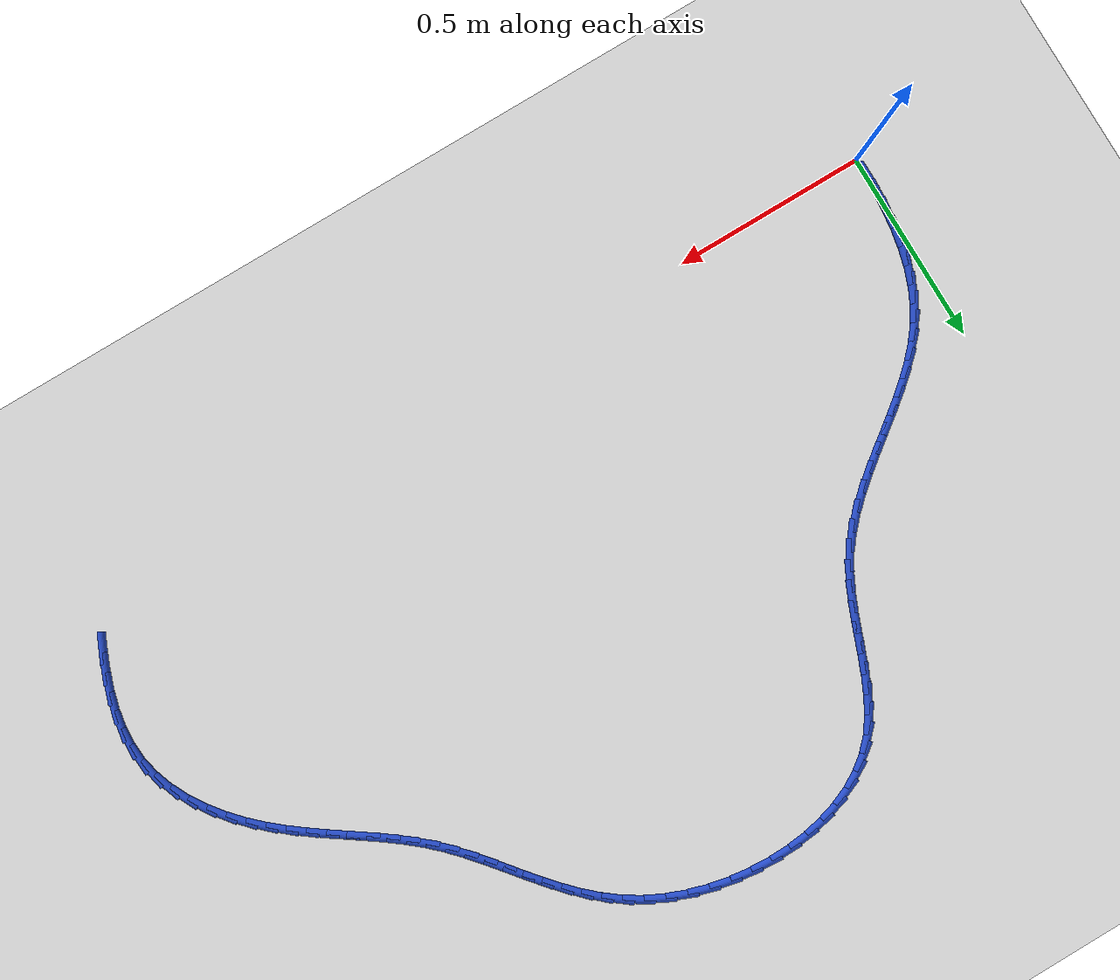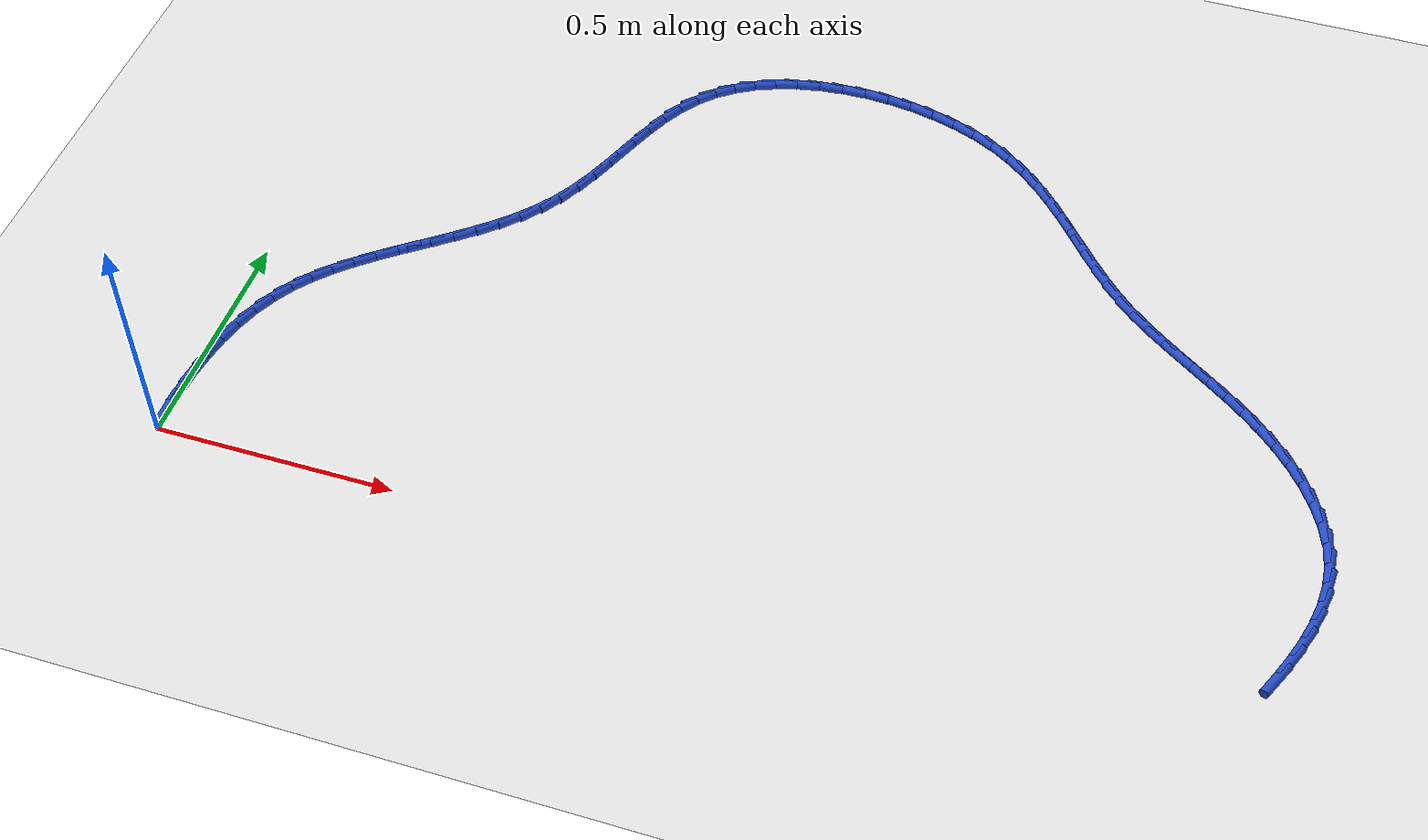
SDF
<sdf version="1.6">
 <world name="default">
  <model name="ground_plane">
   <static>1</static>
   <link name="link">
    <collision name="collision">
     <geometry><plane><normal>0 0 1</normal><size>100 100</size></plane></geometry>
     <surface><friction><ode><mu>100</mu><mu2>50</mu2></ode></friction></surface>
    </collision>
    <visual name="visual">
     <cast_shadows>0</cast_shadows>
     <geometry><plane><normal>0 0 1</normal><size>100 100</size></plane></geometry>
     <material>
      <script><uri>file://media/materials/scripts/gazebo.material</uri><name>Gazebo/WhiteGlow</name></script>
     </material>
    </visual>
   </link>
  </model>
  <model name="line">
   <link name="link_2">
    <pose>0.0015339669497802014 0.10148856789524614 0.01 0 1.57 1.490337265067527</pose>
    <collision name="collision">
     <geometry><cylinder><radius>0.01</radius><length>0.08</length></cylinder></geometry>
    </collision>
    <visual name="visual">
     <material>
      <script><name>Gazebo/Blue</name><uri>file://media/materials/scripts/gazebo.material</uri></script>
     </material>
     <geometry><cylinder><radius>0.01</radius><length>0.08</length></cylinder></geometry>
    </visual>
   </link>
   <link name="link_3">
    <pose>0.00558555432442037 0.1517357450943004 0.01 0 1.57 1.4363469865343408</pose>
    <collision name="collision">
     <geometry><cylinder><radius>0.01</radius><length>0.08</length></cylinder></geometry>
    </collision>
    <visual name="visual">
     <material>
      <script><name>Gazebo/Blue</name><uri>file://media/materials/scripts/gazebo.material</uri></script>
     </material>
     <geometry><cylinder><radius>0.01</radius><length>0.08</length></cylinder></geometry>
    </visual>
   </link>
   <link name="link_4">
    <pose>0.012267335646483097 0.2011333200786106 0.01 0 1.57 1.37319205572349</pose>
    <collision name="collision">
     <geometry><cylinder><radius>0.01</radius><length>0.08</length></cylinder></geometry>
    </collision>
    <visual name="visual">
     <material>
      <script><name>Gazebo/Blue</name><uri>file://media/materials/scripts/gazebo.material</uri></script>
     </material>
     <geometry><cylinder><radius>0.01</radius><length>0.08</length></cylinder></geometry>
    </visual>
   </link>
   <link name="link_5">
    <pose>0.02190965442666025 0.24929264456140315 0.01 0 1.57 1.2996993328609765</pose>
    <collision name="collision">
     <geometry><cylinder><radius>0.01</radius><length>0.08</length></cylinder></geometry>
    </collision>
    <visual name="visual">
     <material>
      <script><name>Gazebo/Blue</name><uri>file://media/materials/scripts/gazebo.material</uri></script>
     </material>
     <geometry><cylinder><radius>0.01</radius><length>0.08</length></cylinder></geometry>
    </visual>
   </link>
   <link name="link_6">
    <pose>0.034842854175643714 0.2958250702559045 0.01 0 1.57 1.214773916480472</pose>
    <collision name="collision">
     <geometry><cylinder><radius>0.01</radius><length>0.08</length></cylinder></geometry>
    </collision>
    <visual name="visual">
     <material>
      <script><name>Gazebo/Blue</name><uri>file://media/materials/scripts/gazebo.material</uri></script>
     </material>
     <geometry><cylinder><radius>0.01</radius><length>0.08</length></cylinder></geometry>
    </visual>
   </link>
   <link name="link_7">
    <pose>0.05139727840412536 0.3403419488753411 0.01 0 1.57 1.1176580658109911</pose>
    <collision name="collision">
     <geometry><cylinder><radius>0.01</radius><length>0.08</length></cylinder></geometry>
    </collision>
    <visual name="visual">
     <material>
      <script><name>Gazebo/Blue</name><uri>file://media/materials/scripts/gazebo.material</uri></script>
     </material>
     <geometry><cylinder><radius>0.01</radius><length>0.08</length></cylinder></geometry>
    </visual>
   </link>
   <link name="link_8">
    <pose>0.07190327062279704 0.38245463213293907 0.01 0 1.57 1.0086001765209236</pose>
    <collision name="collision">
     <geometry><cylinder><radius>0.01</radius><length>0.08</length></cylinder></geometry>
    </collision>
    <visual name="visual">
     <material>
      <script><name>Gazebo/Blue</name><uri>file://media/materials/scripts/gazebo.material</uri></script>
     </material>
     <geometry><cylinder><radius>0.01</radius><length>0.08</length></cylinder></geometry>
    </visual>
   </link>
   <link name="link_9">
    <pose>0.09668090085959263 0.421783383661874 0.01 0 1.57 0.9006516839340023</pose>
    <collision name="collision">
     <geometry><cylinder><radius>0.01</radius><length>0.08</length></cylinder></geometry>
    </collision>
    <visual name="visual">
     <material>
      <script><name>Gazebo/Blue</name><uri>file://media/materials/scripts/gazebo.material</uri></script>
     </material>
     <geometry><cylinder><radius>0.01</radius><length>0.08</length></cylinder></geometry>
    </visual>
   </link>
   <link name="link_10">
    <pose>0.12563014930665417 0.4583128816834464 0.01 0 1.57 0.8114361110938803</pose>
    <collision name="collision">
     <geometry><cylinder><radius>0.01</radius><length>0.08</length></cylinder></geometry>
    </collision>
    <visual name="visual">
     <material>
      <script><name>Gazebo/Blue</name><uri>file://media/materials/scripts/gazebo.material</uri></script>
     </material>
     <geometry><cylinder><radius>0.01</radius><length>0.08</length></cylinder></geometry>
    </visual>
   </link>
   <link name="link_11">
    <pose>0.15809299289128564 0.4925118545258721 0.01 0 1.57 0.7424206700754056</pose>
    <collision name="collision">
     <geometry><cylinder><radius>0.01</radius><length>0.08</length></cylinder></geometry>
    </collision>
    <visual name="visual">
     <material>
      <script><name>Gazebo/Blue</name><uri>file://media/materials/scripts/gazebo.material</uri></script>
     </material>
     <geometry><cylinder><radius>0.01</radius><length>0.08</length></cylinder></geometry>
    </visual>
   </link>
   <link name="link_12">
    <pose>0.19337285360434386 0.5248824757000119 0.01 0 1.57 0.6928025710875316</pose>
    <collision name="collision">
     <geometry><cylinder><radius>0.01</radius><length>0.08</length></cylinder></geometry>
    </collision>
    <visual name="visual">
     <material>
      <script><name>Gazebo/Blue</name><uri>file://media/materials/scripts/gazebo.material</uri></script>
     </material>
     <geometry><cylinder><radius>0.01</radius><length>0.08</length></cylinder></geometry>
    </visual>
   </link>
   <link name="link_13">
    <pose>0.23077315343668575 0.5559269187167268 0.01 0 1.57 0.6614261168781185</pose>
    <collision name="collision">
     <geometry><cylinder><radius>0.01</radius><length>0.08</length></cylinder></geometry>
    </collision>
    <visual name="visual">
     <material>
      <script><name>Gazebo/Blue</name><uri>file://media/materials/scripts/gazebo.material</uri></script>
     </material>
     <geometry><cylinder><radius>0.01</radius><length>0.08</length></cylinder></geometry>
    </visual>
   </link>
   <link name="link_14">
    <pose>0.2695973143791681 0.5861473570868777 0.01 0 1.57 0.6472933082343424</pose>
    <collision name="collision">
     <geometry><cylinder><radius>0.01</radius><length>0.08</length></cylinder></geometry>
    </collision>
    <visual name="visual">
     <material>
      <script><name>Gazebo/Blue</name><uri>file://media/materials/scripts/gazebo.material</uri></script>
     </material>
     <geometry><cylinder><radius>0.01</radius><length>0.08</length></cylinder></geometry>
    </visual>
   </link>
   <link name="link_15">
    <pose>0.30914875842264783 0.6160459643213256 0.01 0 1.57 0.6498146580403017</pose>
    <collision name="collision">
     <geometry><cylinder><radius>0.01</radius><length>0.08</length></cylinder></geometry>
    </collision>
    <visual name="visual">
     <material>
      <script><name>Gazebo/Blue</name><uri>file://media/materials/scripts/gazebo.material</uri></script>
     </material>
     <geometry><cylinder><radius>0.01</radius><length>0.08</length></cylinder></geometry>
    </visual>
   </link>
   <link name="link_16">
    <pose>0.34873090755798186 0.6461249139309321 0.01 0 1.57 0.6688920855835448</pose>
    <collision name="collision">
     <geometry><cylinder><radius>0.01</radius><length>0.08</length></cylinder></geometry>
    </collision>
    <visual name="visual">
     <material>
      <script><name>Gazebo/Blue</name><uri>file://media/materials/scripts/gazebo.material</uri></script>
     </material>
     <geometry><cylinder><radius>0.01</radius><length>0.08</length></cylinder></geometry>
    </visual>
   </link>
   <link name="link_17">
    <pose>0.38764718377602714 0.6768863794265575 0.01 0 1.57 0.7048866489453667</pose>
    <collision name="collision">
     <geometry><cylinder><radius>0.01</radius><length>0.08</length></cylinder></geometry>
    </collision>
    <visual name="visual">
     <material>
      <script><name>Gazebo/Blue</name><uri>file://media/materials/scripts/gazebo.material</uri></script>
     </material>
     <geometry><cylinder><radius>0.01</radius><length>0.08</length></cylinder></geometry>
    </visual>
   </link>
   <link name="link_18">
    <pose>0.4252010090676404 0.708832534319063 0.01 0 1.57 0.7584722635348621</pose>
    <collision name="collision">
     <geometry><cylinder><radius>0.01</radius><length>0.08</length></cylinder></geometry>
    </collision>
    <visual name="visual">
     <material>
      <script><name>Gazebo/Blue</name><uri>file://media/materials/scripts/gazebo.material</uri></script>
     </material>
     <geometry><cylinder><radius>0.01</radius><length>0.08</length></cylinder></geometry>
    </visual>
   </link>
   <link name="link_19">
    <pose>0.46069580542367844 0.7424655521193093 0.01 0 1.57 0.8303330194741779</pose>
    <collision name="collision">
     <geometry><cylinder><radius>0.01</radius><length>0.08</length></cylinder></geometry>
    </collision>
    <visual name="visual">
     <material>
      <script><name>Gazebo/Blue</name><uri>file://media/materials/scripts/gazebo.material</uri></script>
     </material>
     <geometry><cylinder><radius>0.01</radius><length>0.08</length></cylinder></geometry>
    </visual>
   </link>
   <link name="link_20">
    <pose>0.4934349948349982 0.7782876063381576 0.01 0 1.57 0.920647395929913</pose>
    <collision name="collision">
     <geometry><cylinder><radius>0.01</radius><length>0.08</length></cylinder></geometry>
    </collision>
    <visual name="visual">
     <material>
      <script><name>Gazebo/Blue</name><uri>file://media/materials/scripts/gazebo.material</uri></script>
     </material>
     <geometry><cylinder><radius>0.01</radius><length>0.08</length></cylinder></geometry>
    </visual>
   </link>
   <link name="link_21">
    <pose>0.5227219992924568 0.8168008704864695 0.01 0 1.57 1.0240096917019041</pose>
    <collision name="collision">
     <geometry><cylinder><radius>0.01</radius><length>0.08</length></cylinder></geometry>
    </collision>
    <visual name="visual">
     <material>
      <script><name>Gazebo/Blue</name><uri>file://media/materials/scripts/gazebo.material</uri></script>
     </material>
     <geometry><cylinder><radius>0.01</radius><length>0.08</length></cylinder></geometry>
    </visual>
   </link>
   <link name="link_22">
    <pose>0.5480275524140348 0.8583744856599039 0.01 0 1.57 1.1099008937512582</pose>
    <collision name="collision">
     <geometry><cylinder><radius>0.01</radius><length>0.08</length></cylinder></geometry>
    </collision>
    <visual name="visual">
     <material>
      <script><name>Gazebo/Blue</name><uri>file://media/materials/scripts/gazebo.material</uri></script>
     </material>
     <geometry><cylinder><radius>0.01</radius><length>0.08</length></cylinder></geometry>
    </visual>
   </link>
   <link name="link_23">
    <pose>0.5699351493587663 0.902492816696223 0.01 0 1.57 1.167297756255069</pose>
    <collision name="collision">
     <geometry><cylinder><radius>0.01</radius><length>0.08</length></cylinder></geometry>
    </collision>
    <visual name="visual">
     <material>
      <script><name>Gazebo/Blue</name><uri>file://media/materials/scripts/gazebo.material</uri></script>
     </material>
     <geometry><cylinder><radius>0.01</radius><length>0.08</length></cylinder></geometry>
    </visual>
   </link>
   <link name="link_24">
    <pose>0.5894824025876251 0.9482791517853757 0.01 0 1.57 1.197803876333992</pose>
    <collision name="collision">
     <geometry><cylinder><radius>0.01</radius><length>0.08</length></cylinder></geometry>
    </collision>
    <visual name="visual">
     <material>
      <script><name>Gazebo/Blue</name><uri>file://media/materials/scripts/gazebo.material</uri></script>
     </material>
     <geometry><cylinder><radius>0.01</radius><length>0.08</length></cylinder></geometry>
    </visual>
   </link>
   <link name="link_25">
    <pose>0.6077082669741406 0.9948557117414983 0.01 0 1.57 1.2024416871880363</pose>
    <collision name="collision">
     <geometry><cylinder><radius>0.01</radius><length>0.08</length></cylinder></geometry>
    </collision>
    <visual name="visual">
     <material>
      <script><name>Gazebo/Blue</name><uri>file://media/materials/scripts/gazebo.material</uri></script>
     </material>
     <geometry><cylinder><radius>0.01</radius><length>0.08</length></cylinder></geometry>
    </visual>
   </link>
   <link name="link_26">
    <pose>0.6256516973918413 1.0413447173787254 0.01 0 1.57 1.1810364653430174</pose>
    <collision name="collision">
     <geometry><cylinder><radius>0.01</radius><length>0.08</length></cylinder></geometry>
    </collision>
    <visual name="visual">
     <material>
      <script><name>Gazebo/Blue</name><uri>file://media/materials/scripts/gazebo.material</uri></script>
     </material>
     <geometry><cylinder><radius>0.01</radius><length>0.08</length></cylinder></geometry>
    </visual>
   </link>
   <link name="link_27">
    <pose>0.6443516487142568 1.086868389511191 0.01 0 1.57 1.132081352651135</pose>
    <collision name="collision">
     <geometry><cylinder><radius>0.01</radius><length>0.08</length></cylinder></geometry>
    </collision>
    <visual name="visual">
     <material>
      <script><name>Gazebo/Blue</name><uri>file://media/materials/scripts/gazebo.material</uri></script>
     </material>
     <geometry><cylinder><radius>0.01</radius><length>0.08</length></cylinder></geometry>
    </visual>
   </link>
   <link name="link_28">
    <pose>0.6648470758149156 1.1305489489530314 0.01 0 1.57 1.0530439334400847</pose>
    <collision name="collision">
     <geometry><cylinder><radius>0.01</radius><length>0.08</length></cylinder></geometry>
    </collision>
    <visual name="visual">
     <material>
      <script><name>Gazebo/Blue</name><uri>file://media/materials/scripts/gazebo.material</uri></script>
     </material>
     <geometry><cylinder><radius>0.01</radius><length>0.08</length></cylinder></geometry>
    </visual>
   </link>
   <link name="link_29">
    <pose>0.6881769335673472 1.1715086165183806 0.01 0 1.57 0.9414468973535122</pose>
    <collision name="collision">
     <geometry><cylinder><radius>0.01</radius><length>0.08</length></cylinder></geometry>
    </collision>
    <visual name="visual">
     <material>
      <script><name>Gazebo/Blue</name><uri>file://media/materials/scripts/gazebo.material</uri></script>
     </material>
     <geometry><cylinder><radius>0.01</radius><length>0.08</length></cylinder></geometry>
    </visual>
   </link>
   <link name="link_30">
    <pose>0.7153801768450802 1.2088696130213732 0.01 0 1.57 0.7979616281621175</pose>
    <collision name="collision">
     <geometry><cylinder><radius>0.01</radius><length>0.08</length></cylinder></geometry>
    </collision>
    <visual name="visual">
     <material>
      <script><name>Gazebo/Blue</name><uri>file://media/materials/scripts/gazebo.material</uri></script>
     </material>
     <geometry><cylinder><radius>0.01</radius><length>0.08</length></cylinder></geometry>
    </visual>
   </link>
   <link name="link_31">
    <pose>0.7474653323309163 1.241771271007985 0.01 0 1.57 0.6459846368756833</pose>
    <collision name="collision">
     <geometry><cylinder><radius>0.01</radius><length>0.08</length></cylinder></geometry>
    </collision>
    <visual name="visual">
     <material>
      <script><name>Gazebo/Blue</name><uri>file://media/materials/scripts/gazebo.material</uri></script>
     </material>
     <geometry><cylinder><radius>0.01</radius><length>0.08</length></cylinder></geometry>
    </visual>
   </link>
   <link name="link_32">
    <pose>0.7846449668918919 1.269800542504592 0.01 0 1.57 0.5088235489701044</pose>
    <collision name="collision">
     <geometry><cylinder><radius>0.01</radius><length>0.08</length></cylinder></geometry>
    </collision>
    <visual name="visual">
     <material>
      <script><name>Gazebo/Blue</name><uri>file://media/materials/scripts/gazebo.material</uri></script>
     </material>
     <geometry><cylinder><radius>0.01</radius><length>0.08</length></cylinder></geometry>
    </visual>
   </link>
   <link name="link_33">
    <pose>0.8262783211273758 1.2930242598694421 0.01 0 1.57 0.3870737006810017</pose>
    <collision name="collision">
     <geometry><cylinder><radius>0.01</radius><length>0.08</length></cylinder></geometry>
    </collision>
    <visual name="visual">
     <material>
      <script><name>Gazebo/Blue</name><uri>file://media/materials/scripts/gazebo.material</uri></script>
     </material>
     <geometry><cylinder><radius>0.01</radius><length>0.08</length></cylinder></geometry>
    </visual>
   </link>
   <link name="link_34">
    <pose>0.8716827167334245 1.3115328291605468 0.01 0 1.57 0.2788477642974198</pose>
    <collision name="collision">
     <geometry><cylinder><radius>0.01</radius><length>0.08</length></cylinder></geometry>
    </collision>
    <visual name="visual">
     <material>
      <script><name>Gazebo/Blue</name><uri>file://media/materials/scripts/gazebo.material</uri></script>
     </material>
     <geometry><cylinder><radius>0.01</radius><length>0.08</length></cylinder></geometry>
    </visual>
   </link>
   <link name="link_35">
    <pose>0.9201754754060937 1.325416656435915 0.01 0 1.57 0.18166398945779935</pose>
    <collision name="collision">
     <geometry><cylinder><radius>0.01</radius><length>0.08</length></cylinder></geometry>
    </collision>
    <visual name="visual">
     <material>
      <script><name>Gazebo/Blue</name><uri>file://media/materials/scripts/gazebo.material</uri></script>
     </material>
     <geometry><cylinder><radius>0.01</radius><length>0.08</length></cylinder></geometry>
    </visual>
   </link>
   <link name="link_36">
    <pose>0.97107391884144 1.3347661477535584 0.01 0 1.57 0.09295494987377644</pose>
    <collision name="collision">
     <geometry><cylinder><radius>0.01</radius><length>0.08</length></cylinder></geometry>
    </collision>
    <visual name="visual">
     <material>
      <script><name>Gazebo/Blue</name><uri>file://media/materials/scripts/gazebo.material</uri></script>
     </material>
     <geometry><cylinder><radius>0.01</radius><length>0.08</length></cylinder></geometry>
    </visual>
   </link>
   <link name="link_37">
    <pose>1.023695368735519 1.3396717091714867 0.01 0 1.57 0.010286988682800771</pose>
    <collision name="collision">
     <geometry><cylinder><radius>0.01</radius><length>0.08</length></cylinder></geometry>
    </collision>
    <visual name="visual">
     <material>
      <script><name>Gazebo/Blue</name><uri>file://media/materials/scripts/gazebo.material</uri></script>
     </material>
     <geometry><cylinder><radius>0.01</radius><length>0.08</length></cylinder></geometry>
    </visual>
   </link>
   <link name="link_38">
    <pose>1.0773571467843877 1.3402237467477103 0.01 0 1.57 -0.06859122017718487</pose>
    <collision name="collision">
     <geometry><cylinder><radius>0.01</radius><length>0.08</length></cylinder></geometry>
    </collision>
    <visual name="visual">
     <material>
      <script><name>Gazebo/Blue</name><uri>file://media/materials/scripts/gazebo.material</uri></script>
     </material>
     <geometry><cylinder><radius>0.01</radius><length>0.08</length></cylinder></geometry>
    </visual>
   </link>
   <link name="link_39">
    <pose>1.1313765746841016 1.3365126665402398 0.01 0 1.57 -0.14578541319424707</pose>
    <collision name="collision">
     <geometry><cylinder><radius>0.01</radius><length>0.08</length></cylinder></geometry>
    </collision>
    <visual name="visual">
     <material>
      <script><name>Gazebo/Blue</name><uri>file://media/materials/scripts/gazebo.material</uri></script>
     </material>
     <geometry><cylinder><radius>0.01</radius><length>0.08</length></cylinder></geometry>
    </visual>
   </link>
   <link name="link_40">
    <pose>1.1850709741307175 1.328628874607086 0.01 0 1.57 -0.2233294925358326</pose>
    <collision name="collision">
     <geometry><cylinder><radius>0.01</radius><length>0.08</length></cylinder></geometry>
    </collision>
    <visual name="visual">
     <material>
      <script><name>Gazebo/Blue</name><uri>file://media/materials/scripts/gazebo.material</uri></script>
     </material>
     <geometry><cylinder><radius>0.01</radius><length>0.08</length></cylinder></geometry>
    </visual>
   </link>
   <link name="link_41">
    <pose>1.2377576668202912 1.316662777006259 0.01 0 1.57 -0.3032716108715075</pose>
    <collision name="collision">
     <geometry><cylinder><radius>0.01</radius><length>0.08</length></cylinder></geometry>
    </collision>
    <visual name="visual">
     <material>
      <script><name>Gazebo/Blue</name><uri>file://media/materials/scripts/gazebo.material</uri></script>
     </material>
     <geometry><cylinder><radius>0.01</radius><length>0.08</length></cylinder></geometry>
    </visual>
   </link>
   <link name="link_42">
    <pose>1.2887539744488787 1.3007047797957694 0.01 0 1.57 -0.3877576998434893</pose>
    <collision name="collision">
     <geometry><cylinder><radius>0.01</radius><length>0.08</length></cylinder></geometry>
    </collision>
    <visual name="visual">
     <material>
      <script><name>Gazebo/Blue</name><uri>file://media/materials/scripts/gazebo.material</uri></script>
     </material>
     <geometry><cylinder><radius>0.01</radius><length>0.08</length></cylinder></geometry>
    </visual>
   </link>
   <link name="link_43">
    <pose>1.3373772187125366 1.2808452890336273 0.01 0 1.57 -0.47909557566976546</pose>
    <collision name="collision">
     <geometry><cylinder><radius>0.01</radius><length>0.08</length></cylinder></geometry>
    </collision>
    <visual name="visual">
     <material>
      <script><name>Gazebo/Blue</name><uri>file://media/materials/scripts/gazebo.material</uri></script>
     </material>
     <geometry><cylinder><radius>0.01</radius><length>0.08</length></cylinder></geometry>
    </visual>
   </link>
   <link name="link_44">
    <pose>1.382944721307321 1.2571747107778435 0.01 0 1.57 -0.5778630486349271</pose>
    <collision name="collision">
     <geometry><cylinder><radius>0.01</radius><length>0.08</length></cylinder></geometry>
    </collision>
    <visual name="visual">
     <material>
      <script><name>Gazebo/Blue</name><uri>file://media/materials/scripts/gazebo.material</uri></script>
     </material>
     <geometry><cylinder><radius>0.01</radius><length>0.08</length></cylinder></geometry>
    </visual>
   </link>
   <link name="link_45">
    <pose>1.4248817046867637 1.22982682868086 0.01 0 1.57 -0.670587735578084</pose>
    <collision name="collision">
     <geometry><cylinder><radius>0.01</radius><length>0.08</length></cylinder></geometry>
    </collision>
    <visual name="visual">
     <material>
      <script><name>Gazebo/Blue</name><uri>file://media/materials/scripts/gazebo.material</uri></script>
     </material>
     <geometry><cylinder><radius>0.01</radius><length>0.08</length></cylinder></geometry>
    </visual>
   </link>
   <link name="link_46">
    <pose>1.463418431041542 1.1992590634856821 0.01 0 1.57 -0.7484623457011957</pose>
    <collision name="collision">
     <geometry><cylinder><radius>0.01</radius><length>0.08</length></cylinder></geometry>
    </collision>
    <visual name="visual">
     <material>
      <script><name>Gazebo/Blue</name><uri>file://media/materials/scripts/gazebo.material</uri></script>
     </material>
     <geometry><cylinder><radius>0.01</radius><length>0.08</length></cylinder></geometry>
    </visual>
   </link>
   <link name="link_47">
    <pose>1.4991489735888635 1.166075092991594 0.01 0 1.57 -0.8097773036211393</pose>
    <collision name="collision">
     <geometry><cylinder><radius>0.01</radius><length>0.08</length></cylinder></geometry>
    </collision>
    <visual name="visual">
     <material>
      <script><name>Gazebo/Blue</name><uri>file://media/materials/scripts/gazebo.material</uri></script>
     </material>
     <geometry><cylinder><radius>0.01</radius><length>0.08</length></cylinder></geometry>
    </visual>
   </link>
   <link name="link_48">
    <pose>1.5326691866914544 1.130879311042972 0.01 0 1.57 -0.8538581449817241</pose>
    <collision name="collision">
     <geometry><cylinder><radius>0.01</radius><length>0.08</length></cylinder></geometry>
    </collision>
    <visual name="visual">
     <material>
      <script><name>Gazebo/Blue</name><uri>file://media/materials/scripts/gazebo.material</uri></script>
     </material>
     <geometry><cylinder><radius>0.01</radius><length>0.08</length></cylinder></geometry>
    </visual>
   </link>
   <link name="link_49">
    <pose>1.5645749247120395 1.0942761114841926 0.01 0 1.57 -0.8805672174371061</pose>
    <collision name="collision">
     <geometry><cylinder><radius>0.01</radius><length>0.08</length></cylinder></geometry>
    </collision>
    <visual name="visual">
     <material>
      <script><name>Gazebo/Blue</name><uri>file://media/materials/scripts/gazebo.material</uri></script>
     </material>
     <geometry><cylinder><radius>0.01</radius><length>0.08</length></cylinder></geometry>
    </visual>
   </link>
   <link name="link_50">
    <pose>1.5954620420133467 1.056869888159632 0.01 0 1.57 -0.889916532141338</pose>
    <collision name="collision">
     <geometry><cylinder><radius>0.01</radius><length>0.08</length></cylinder></geometry>
    </collision>
    <visual name="visual">
     <material>
      <script><name>Gazebo/Blue</name><uri>file://media/materials/scripts/gazebo.material</uri></script>
     </material>
     <geometry><cylinder><radius>0.01</radius><length>0.08</length></cylinder></geometry>
    </visual>
   </link>
   <link name="link_51">
    <pose>1.625926392958101 1.0192650349136676 0.01 0 1.57 -0.8818255697473878</pose>
    <collision name="collision">
     <geometry><cylinder><radius>0.01</radius><length>0.08</length></cylinder></geometry>
    </collision>
    <visual name="visual">
     <material>
      <script><name>Gazebo/Blue</name><uri>file://media/materials/scripts/gazebo.material</uri></script>
     </material>
     <geometry><cylinder><radius>0.01</radius><length>0.08</length></cylinder></geometry>
    </visual>
   </link>
   <link name="link_52">
    <pose>1.6565638319090277 0.9820659455906747 0.01 0 1.57 -0.8560331456970506</pose>
    <collision name="collision">
     <geometry><cylinder><radius>0.01</radius><length>0.08</length></cylinder></geometry>
    </collision>
    <visual name="visual">
     <material>
      <script><name>Gazebo/Blue</name><uri>file://media/materials/scripts/gazebo.material</uri></script>
     </material>
     <geometry><cylinder><radius>0.01</radius><length>0.08</length></cylinder></geometry>
    </visual>
   </link>
   <link name="link_53">
    <pose>1.6879702132288534 0.9458770140350308 0.01 0 1.57 -0.8121671324895129</pose>
    <collision name="collision">
     <geometry><cylinder><radius>0.01</radius><length>0.08</length></cylinder></geometry>
    </collision>
    <visual name="visual">
     <material>
      <script><name>Gazebo/Blue</name><uri>file://media/materials/scripts/gazebo.material</uri></script>
     </material>
     <geometry><cylinder><radius>0.01</radius><length>0.08</length></cylinder></geometry>
    </visual>
   </link>
   <link name="link_54">
    <pose>1.720741391280304 0.9113026340911117 0.01 0 1.57 -0.7513501178696858</pose>
    <collision name="collision">
     <geometry><cylinder><radius>0.01</radius><length>0.08</length></cylinder></geometry>
    </collision>
    <visual name="visual">
     <material>
      <script><name>Gazebo/Blue</name><uri>file://media/materials/scripts/gazebo.material</uri></script>
     </material>
     <geometry><cylinder><radius>0.01</radius><length>0.08</length></cylinder></geometry>
    </visual>
   </link>
   <link name="link_55">
    <pose>1.755430449444342 0.8788988395766576 0.01 0 1.57 -0.6922541889673912</pose>
    <collision name="collision">
     <geometry><cylinder><radius>0.01</radius><length>0.08</length></cylinder></geometry>
    </collision>
    <visual name="visual">
     <material>
      <script><name>Gazebo/Blue</name><uri>file://media/materials/scripts/gazebo.material</uri></script>
     </material>
     <geometry><cylinder><radius>0.01</radius><length>0.08</length></cylinder></geometry>
    </visual>
   </link>
   <link name="link_56">
    <pose>1.7920121384225778 0.8485677587261015 0.01 0 1.57 -0.6485488712155655</pose>
    <collision name="collision">
     <geometry><cylinder><radius>0.01</radius><length>0.08</length></cylinder></geometry>
    </collision>
    <visual name="visual">
     <material>
      <script><name>Gazebo/Blue</name><uri>file://media/materials/scripts/gazebo.material</uri></script>
     </material>
     <geometry><cylinder><radius>0.01</radius><length>0.08</length></cylinder></geometry>
    </visual>
   </link>
   <link name="link_57">
    <pose>1.8300455700944407 0.8197415678652843 0.01 0 1.57 -0.6205406093908845</pose>
    <collision name="collision">
     <geometry><cylinder><radius>0.01</radius><length>0.08</length></cylinder></geometry>
    </collision>
    <visual name="visual">
     <material>
      <script><name>Gazebo/Blue</name><uri>file://media/materials/scripts/gazebo.material</uri></script>
     </material>
     <geometry><cylinder><radius>0.01</radius><length>0.08</length></cylinder></geometry>
    </visual>
   </link>
   <link name="link_58">
    <pose>1.8690807412601105 0.7918421371391454 0.01 0 1.57 -0.6080076414258095</pose>
    <collision name="collision">
     <geometry><cylinder><radius>0.01</radius><length>0.08</length></cylinder></geometry>
    </collision>
    <visual name="visual">
     <material>
      <script><name>Gazebo/Blue</name><uri>file://media/materials/scripts/gazebo.material</uri></script>
     </material>
     <geometry><cylinder><radius>0.01</radius><length>0.08</length></cylinder></geometry>
    </visual>
   </link>
   <link name="link_59">
    <pose>1.908667648719765 0.7642913366926253 0.01 0 1.57 -0.6106963986476253</pose>
    <collision name="collision">
     <geometry><cylinder><radius>0.01</radius><length>0.08</length></cylinder></geometry>
    </collision>
    <visual name="visual">
     <material>
      <script><name>Gazebo/Blue</name><uri>file://media/materials/scripts/gazebo.material</uri></script>
     </material>
     <geometry><cylinder><radius>0.01</radius><length>0.08</length></cylinder></geometry>
    </visual>
   </link>
   <link name="link_60">
    <pose>1.9483562892735833 0.7365110366706634 0.01 0 1.57 -0.6284096501497202</pose>
    <collision name="collision">
     <geometry><cylinder><radius>0.01</radius><length>0.08</length></cylinder></geometry>
    </collision>
    <visual name="visual">
     <material>
      <script><name>Gazebo/Blue</name><uri>file://media/materials/scripts/gazebo.material</uri></script>
     </material>
     <geometry><cylinder><radius>0.01</radius><length>0.08</length></cylinder></geometry>
    </visual>
   </link>
   <link name="link_61">
    <pose>1.9876966597217443 0.7079231072181997 0.01 0 1.57 -0.6609866183630148</pose>
    <collision name="collision">
     <geometry><cylinder><radius>0.01</radius><length>0.08</length></cylinder></geometry>
    </collision>
    <visual name="visual">
     <material>
      <script><name>Gazebo/Blue</name><uri>file://media/materials/scripts/gazebo.material</uri></script>
     </material>
     <geometry><cylinder><radius>0.01</radius><length>0.08</length></cylinder></geometry>
    </visual>
   </link>
   <link name="link_62">
    <pose>2.026238756864427 0.6779494184801739 0.01 0 1.57 -0.7081847291299853</pose>
    <collision name="collision">
     <geometry><cylinder><radius>0.01</radius><length>0.08</length></cylinder></geometry>
    </collision>
    <visual name="visual">
     <material>
      <script><name>Gazebo/Blue</name><uri>file://media/materials/scripts/gazebo.material</uri></script>
     </material>
     <geometry><cylinder><radius>0.01</radius><length>0.08</length></cylinder></geometry>
    </visual>
   </link>
   <link name="link_63">
    <pose>2.063532577501809 0.6460118406015259 0.01 0 1.57 -0.7694734384676561</pose>
    <collision name="collision">
     <geometry><cylinder><radius>0.01</radius><length>0.08</length></cylinder></geometry>
    </collision>
    <visual name="visual">
     <material>
      <script><name>Gazebo/Blue</name><uri>file://media/materials/scripts/gazebo.material</uri></script>
     </material>
     <geometry><cylinder><radius>0.01</radius><length>0.08</length></cylinder></geometry>
    </visual>
   </link>
   <link name="link_64">
    <pose>2.0991280664604703 0.6115323704326537 0.01 0 1.57 -0.8421143319772979</pose>
    <collision name="collision">
     <geometry><cylinder><radius>0.01</radius><length>0.08</length></cylinder></geometry>
    </collision>
    <visual name="visual">
     <material>
      <script><name>Gazebo/Blue</name><uri>file://media/materials/scripts/gazebo.material</uri></script>
     </material>
     <geometry><cylinder><radius>0.01</radius><length>0.08</length></cylinder></geometry>
    </visual>
   </link>
   <link name="link_65">
    <pose>2.1324798478708185 0.5741653853495192 0.01 0 1.57 -0.9216232566486755</pose>
    <collision name="collision">
     <geometry><cylinder><radius>0.01</radius><length>0.08</length></cylinder></geometry>
    </collision>
    <visual name="visual">
     <material>
      <script><name>Gazebo/Blue</name><uri>file://media/materials/scripts/gazebo.material</uri></script>
     </material>
     <geometry><cylinder><radius>0.01</radius><length>0.08</length></cylinder></geometry>
    </visual>
   </link>
   <link name="link_66">
    <pose>2.1627499349139905 0.5342786134368767 0.01 0 1.57 -1.0103895304095358</pose>
    <collision name="collision">
     <geometry><cylinder><radius>0.01</radius><length>0.08</length></cylinder></geometry>
    </collision>
    <visual name="visual">
     <material>
      <script><name>Gazebo/Blue</name><uri>file://media/materials/scripts/gazebo.material</uri></script>
     </material>
     <geometry><cylinder><radius>0.01</radius><length>0.08</length></cylinder></geometry>
    </visual>
   </link>
   <link name="link_67">
    <pose>2.189044379774215 0.49237620903732104 0.01 0 1.57 -1.1123603026348177</pose>
    <collision name="collision">
     <geometry><cylinder><radius>0.01</radius><length>0.08</length></cylinder></geometry>
    </collision>
    <visual name="visual">
     <material>
      <script><name>Gazebo/Blue</name><uri>file://media/materials/scripts/gazebo.material</uri></script>
     </material>
     <geometry><cylinder><radius>0.01</radius><length>0.08</length></cylinder></geometry>
    </visual>
   </link>
   <link name="link_68">
    <pose>2.210469234635718 0.4489623264934487 0.01 0 1.57 -1.2318391719254351</pose>
    <collision name="collision">
     <geometry><cylinder><radius>0.01</radius><length>0.08</length></cylinder></geometry>
    </collision>
    <visual name="visual">
     <material>
      <script><name>Gazebo/Blue</name><uri>file://media/materials/scripts/gazebo.material</uri></script>
     </material>
     <geometry><cylinder><radius>0.01</radius><length>0.08</length></cylinder></geometry>
    </visual>
   </link>
   <link name="link_69">
    <pose>2.226130551682727 0.40454112014785476 0.01 0 1.57 -1.371380939646697</pose>
    <collision name="collision">
     <geometry><cylinder><radius>0.01</radius><length>0.08</length></cylinder></geometry>
    </collision>
    <visual name="visual">
     <material>
      <script><name>Gazebo/Blue</name><uri>file://media/materials/scripts/gazebo.material</uri></script>
     </material>
     <geometry><cylinder><radius>0.01</radius><length>0.08</length></cylinder></geometry>
    </visual>
   </link>
   <link name="link_70">
    <pose>2.235214508949604 0.35959361348533037 0.01 0 1.57 -1.5128867403425124</pose>
    <collision name="collision">
     <geometry><cylinder><radius>0.01</radius><length>0.08</length></cylinder></geometry>
    </collision>
    <visual name="visual">
     <material>
      <script><name>Gazebo/Blue</name><uri>file://media/materials/scripts/gazebo.material</uri></script>
     </material>
     <geometry><cylinder><radius>0.01</radius><length>0.08</length></cylinder></geometry>
    </visual>
   </link>
   <link name="link_71">
    <pose>2.2378385242578944 0.3143319982083829 0.01 0 1.57 1.502435199325925</pose>
    <collision name="collision">
     <geometry><cylinder><radius>0.01</radius><length>0.08</length></cylinder></geometry>
    </collision>
    <visual name="visual">
     <material>
      <script><name>Gazebo/Blue</name><uri>file://media/materials/scripts/gazebo.material</uri></script>
     </material>
     <geometry><cylinder><radius>0.01</radius><length>0.08</length></cylinder></geometry>
    </visual>
   </link>
   <link name="link_72">
    <pose>2.234720709315024 0.26879505675353993 0.01 0 1.57 1.3949942508130686</pose>
    <collision name="collision">
     <geometry><cylinder><radius>0.01</radius><length>0.08</length></cylinder></geometry>
    </collision>
    <visual name="visual">
     <material>
      <script><name>Gazebo/Blue</name><uri>file://media/materials/scripts/gazebo.material</uri></script>
     </material>
     <geometry><cylinder><radius>0.01</radius><length>0.08</length></cylinder></geometry>
    </visual>
   </link>
   <link name="link_73">
    <pose>2.226589182632983 0.22301868277707718 0.01 0 1.57 1.307032935243157</pose>
    <collision name="collision">
     <geometry><cylinder><radius>0.01</radius><length>0.08</length></cylinder></geometry>
    </collision>
    <visual name="visual">
     <material>
      <script><name>Gazebo/Blue</name><uri>file://media/materials/scripts/gazebo.material</uri></script>
     </material>
     <geometry><cylinder><radius>0.01</radius><length>0.08</length></cylinder></geometry>
    </visual>
   </link>
   <link name="link_74">
    <pose>2.214172062723761 0.17703876993527046 0.01 0 1.57 1.2375435129487957</pose>
    <collision name="collision">
     <geometry><cylinder><radius>0.01</radius><length>0.08</length></cylinder></geometry>
    </collision>
    <visual name="visual">
     <material>
      <script><name>Gazebo/Blue</name><uri>file://media/materials/scripts/gazebo.material</uri></script>
     </material>
     <geometry><cylinder><radius>0.01</radius><length>0.08</length></cylinder></geometry>
    </visual>
   </link>
   <link name="link_75">
    <pose>2.198197468099347 0.130891211884396 0.01 0 1.57 1.1848583645781385</pose>
    <collision name="collision">
     <geometry><cylinder><radius>0.01</radius><length>0.08</length></cylinder></geometry>
    </collision>
    <visual name="visual">
     <material>
      <script><name>Gazebo/Blue</name><uri>file://media/materials/scripts/gazebo.material</uri></script>
     </material>
     <geometry><cylinder><radius>0.01</radius><length>0.08</length></cylinder></geometry>
    </visual>
   </link>
   <link name="link_76">
    <pose>2.1793935172717305 0.08461190228072943 0.01 0 1.57 1.147290527098107</pose>
    <collision name="collision">
     <geometry><cylinder><radius>0.01</radius><length>0.08</length></cylinder></geometry>
    </collision>
    <visual name="visual">
     <material>
      <script><name>Gazebo/Blue</name><uri>file://media/materials/scripts/gazebo.material</uri></script>
     </material>
     <geometry><cylinder><radius>0.01</radius><length>0.08</length></cylinder></geometry>
    </visual>
   </link>
   <link name="link_151">
    <pose>-0.00029840198456517787 0.050817184651331414 0.01 0 1.57 -1.5649243258776484</pose>
    <collision name="collision">
     <geometry><cylinder><radius>0.01</radius><length>0.08</length></cylinder></geometry>
    </collision>
    <visual name="visual">
     <material>
      <script><name>Gazebo/Blue</name><uri>file://media/materials/scripts/gazebo.material</uri></script>
     </material>
     <geometry><cylinder><radius>0.01</radius><length>0.08</length></cylinder></geometry>
    </visual>
   </link>
  </model>
 </world>
</sdf>
